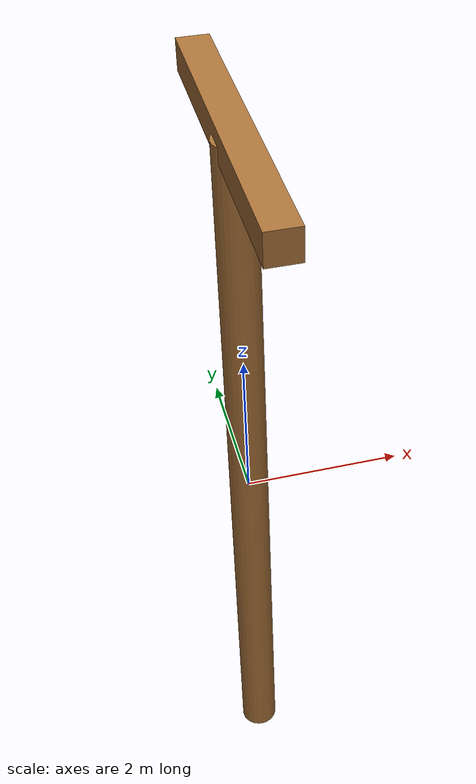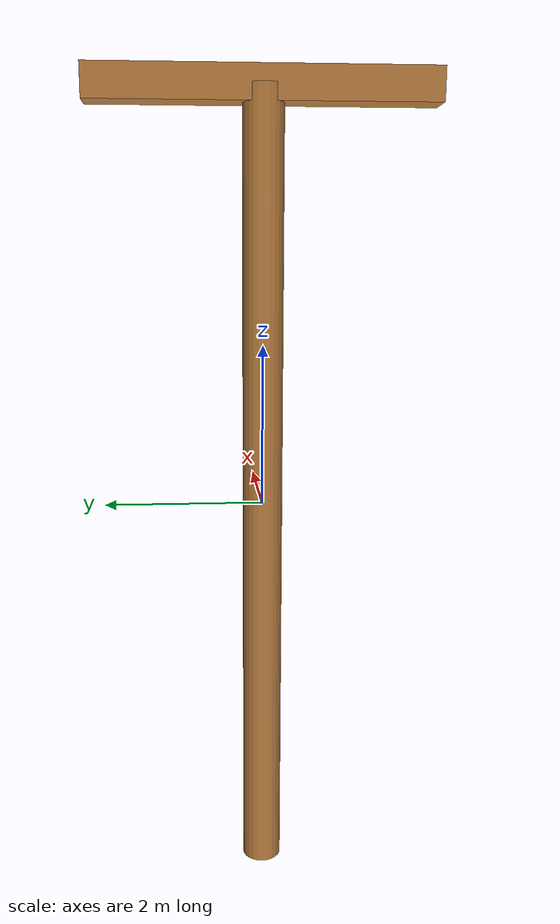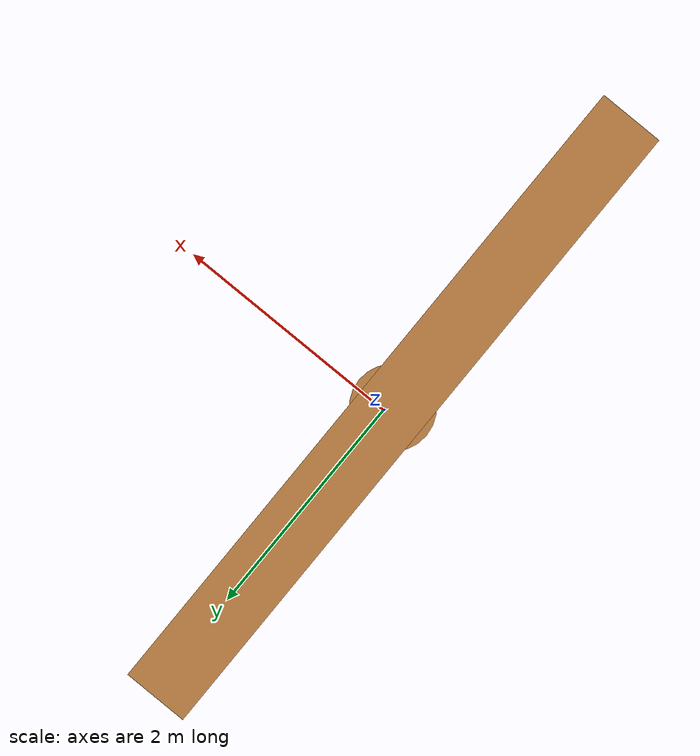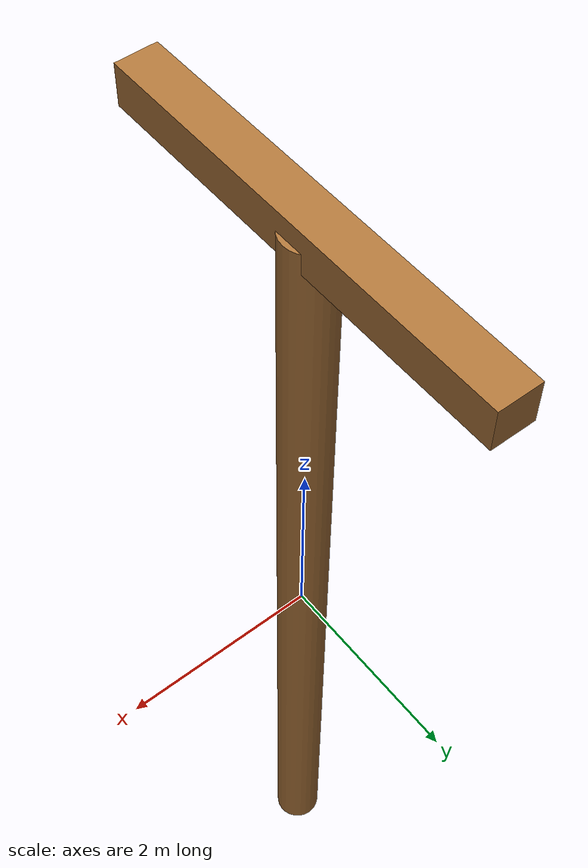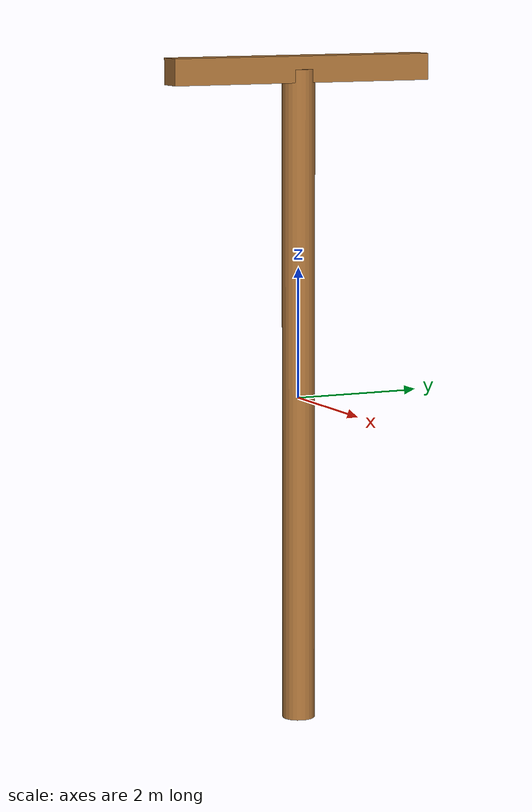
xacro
<?xml version="1.0"?>
<robot name="pole_without_cables"
  xmlns:xacro="http://www.ros.org/wiki/xacro">

  <xacro:property name="M_PI" value="3.1415926535897931" />

  <xacro:property name="pole_height" value="10" />
  <xacro:property name="pole_mass" value="100" />
  <xacro:property name="pole_radius" value="0.25" />

  <xacro:property name="top_length" value="4.2" />
  <xacro:property name="top_height" value="0.4" />
  <xacro:property name="top_width" value="0.4" />

  <!-- materials for visualization -->
  <xacro:include filename="$(find plt_description)/urdf/materials.urdf.xacro" />

  <!-- cables macros -->
  <xacro:include filename="$(find plt_description)/urdf/cable.urdf.xacro" />

  <gazebo>
    <static>true</static>
  </gazebo>

  <link name="footprint"/>
  <!-- Link Falso -->

  <joint name="base_joint" type="fixed">
    <parent link="footprint"/>
    <child link="base_link"/>
  </joint>

  <!-- pole -->
  <link name="base_link">
    <visual>
      <origin rpy="0 0 0" xyz="0 0 0"/>
      <geometry>
        <cylinder length="${pole_height}" radius="${pole_radius}"/>
      </geometry>
      <material name="Brown"/>
    </visual>
    <collision>
      <origin rpy="0 0 0" xyz="0 0 0"/>
      <geometry>
        <cylinder length="${pole_height}" radius="${pole_radius}"/>
      </geometry>
    </collision>
    <inertial>
      <mass value="${pole_mass}"/>
      <inertia ixx="${0.25*pole_mass*pole_radius*pole_radius + 0.083333*pole_mass*pole_height*pole_height}" ixy="0.0" ixz="0.0" iyy="${0.25*pole_mass*pole_radius*pole_radius + 0.083333*pole_mass*pole_height*pole_height}" iyz="0.0" izz="${0.5*pole_mass*pole_radius*pole_radius}" />
    </inertial>
  </link>

  <!-- Trocando a cor -->
	<gazebo reference="base_link">
		<material>Gazebo/Orange</material>
	</gazebo>

  <!-- Apoio dos Cabos-->
  <joint name="pole_to_top" type="fixed">
    <parent link="base_link"/>
    <child link="top"/>
    <origin xyz="0 0 ${pole_height/2}" rpy="0 0 0" />
  </joint>

  <link name="top">
    <visual>
      <origin xyz="0 0 0" rpy="0 0 ${M_PI/2}"/>
      <geometry>
        <box size="${top_length} ${top_height} ${top_width}"/>
      </geometry>
      <material name="Brown"/>
    </visual>
    <collision>
      <origin xyz="0 0 0" rpy="0 0 ${M_PI/2}"/>
      <geometry>
        <box size="${top_length} ${top_height} ${top_width}"/>
      </geometry>
    </collision>
    <inertial>
      <mass value="1"/>
      <inertia ixx="1.0" ixy="0.0" ixz="0.0" iyy="1.0" iyz="0.0" izz="1.0"/>
    </inertial>
  </link>

  <!-- Trocando a cor -->
	<gazebo reference="top">
		<material>Gazebo/Orange</material>
	</gazebo>

  <!-- Cables -->

</robot>

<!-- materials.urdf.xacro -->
<robot>

  <material name="Blue">
    <color rgba="0.0 0.0 0.8 1.0"/>
  </material>

  <material name="Green">
    <color rgba="0.0 0.8 0.0 1.0"/>
  </material>

  <material name="Grey">
    <color rgba="0.7 0.7 0.7 1.0"/>
  </material>

  <material name="Grey2">
    <color rgba="0.9 0.9 0.9 1.0"/>
  </material>

  <material name="Red">
    <color rgba="0.8 0.0 0.0 1.0"/>
  </material>

  <material name="White">
    <color rgba="1.0 1.0 1.0 1.0"/>
  </material>

  <material name="Black">
    <color rgba="0.1 0.1 0.1 1.0"/>
  </material>

  <material name="LightGrey">
    <color rgba="0.6 0.6 0.6 1.0"/>
  </material>

  <material name="Brown">
    <color rgba="0.67 0.45 0.22 1.0"/>
  </material>

</robot>

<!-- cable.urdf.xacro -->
<!-- XML namespaces -->
<robot xmlns:xacro="http://www.ros.org/wiki/xacro">

    <xacro:property name="M_PI" value="3.1415926535897931" />
    <xacro:property name="cylinder_radius" value="0.015" />

    <!-- ============================   Cable Macro   ============================ -->
    <xacro:macro name="cable_macro" params="prefix parent reflect parent_length cable_length">
        <joint name="${prefix}_cable_joint" type="fixed">
            <origin xyz="${cable_length/2} ${0.95*reflect*parent_length/2.0} 0" rpy="0 ${M_PI/2} 0" />
            <parent link="${parent}"/>
            <child link="${prefix}_cable_link"/>
        </joint>

        <link name="${prefix}_cable_link">
            <inertial>
                <mass value="0.1"/>
                <inertia ixx="1.0" ixy="0.0" ixz="0.0" iyy="1.0" iyz="0.0" izz="1.0"/>
            </inertial>
            <visual>
                <geometry>
                    <cylinder length="${cable_length}" radius="${cylinder_radius}"/>
                </geometry>
                <origin rpy="0 0 0" xyz="0 0 0"/>
                <material name="cinza"/>
            </visual>
            <collision>
                <geometry>
                    <cylinder length="${cable_length}" radius="${cylinder_radius}"/>
                </geometry>
                <origin rpy="0 0 0" xyz="0 0 0"/>
                <material name="cinza"/>
            </collision>
        </link>

        <!-- Trocando a cor -->
        <gazebo reference="${prefix}_cable_link">
            <material>Gazebo/Black</material>
        </gazebo>
    </xacro:macro>

</robot>
